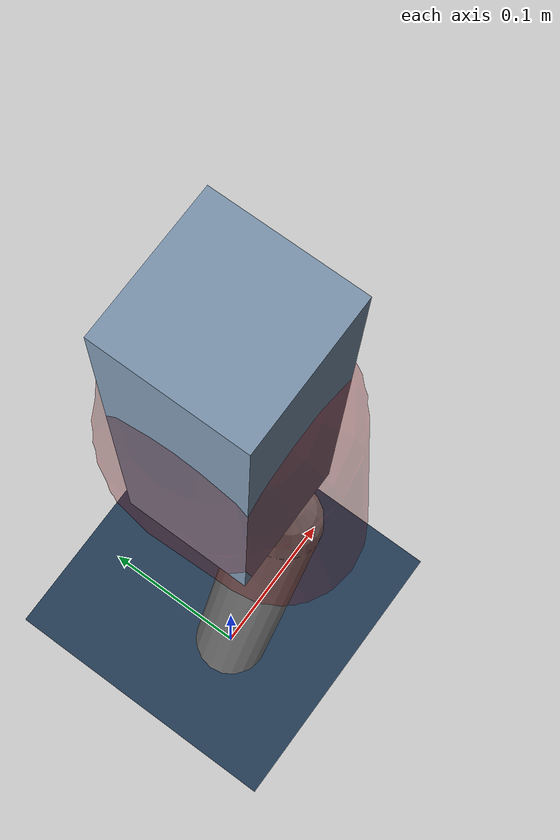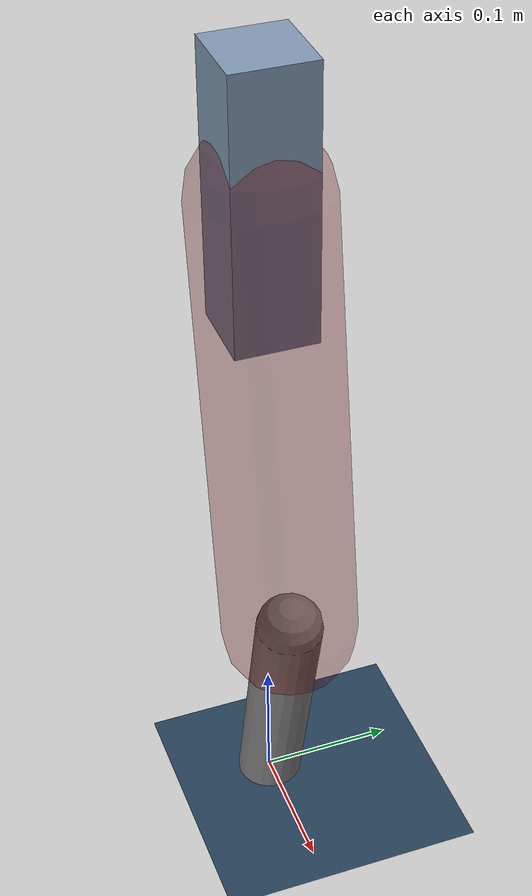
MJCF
<mujoco model="Hopper2D">
	<compiler inertiafromgeom="true" angle="radian" />
	<option timestep="0.001" integrator="implicit" cone="elliptic" solver="Newton" tolerance="1e-10" />

	<default>
		<geom contype="1" conaffinity="1" condim="3" friction="2 0.005 0.0001" solref="0.005 1" />
		<joint limited="true" damping="0.1" />
	</default>

	<asset>
		<texture name="skybox" type="skybox" builtin="gradient" rgb1=".4 .6 .8" rgb2="0 0 0" width="800" height="800" />
		<texture name="grid" type="2d" builtin="checker" rgb1=".1 .2 .3" rgb2=".2 .3 .4" width="300" height="300" mark="edge" markrgb=".2 .3 .4" />
		<material name="ground" texture="grid" texrepeat="1 1" texuniform="true" reflectance="0.1" />
		<material name="leg" rgba="0.5 0.6 0.7 1" />
	</asset>

	<worldbody>

		<geom name="floor" type="plane" size="5 5 0.25" material="ground" />

		<light directional="false" diffuse="0.8 0.8 0.8" specular="0.3 0.3 0.3" pos="0 0 2" dir="0 0 -1" />
		<light mode="targetbodycom" target="base" directional="false" diffuse="0.8 0.8 0.8" specular="0.3 0.3 0.3" pos="0 0 2" dir="0 0 -1" />

		<camera name="fixed" pos="0 -2 1" xyaxes="1 0 0 0 0 1" />
		<camera name="tracking" mode="trackcom" pos="0 -3 1" />

		<body name="root" pos="0 0 0.5255403020145168">
			<joint name="slide_x" type="slide" axis="1 0 0" range="-100 100" />
			<joint name="slide_z" type="slide" axis="0 0 1" range="0 10" />

			<body name="base" pos="0 0 0">
				<geom name="torso" type="box" size="0.03 0.03 0.1" mass="3.687" material="leg" />

				<body name="link1" pos="0 0 0" euler="0 1.4202907298494647 0">
					<joint type="hinge" axis="0 -1 0" pos="0 0 0" name="hinge1" limited="true" range="-3.14 3.14" stiffness="0" damping="0.1" />
					<geom name="thigh" type="capsule" fromto="0 0 0 0.33281442297546165 0 0" size="0.05" rgba="0.5 0 0 0.3" mass="1.0786803843312924" />

					<body name="link2" pos="0.33281442297546165 0 0" euler="0 0.3992144922878952 0">
						<joint type="hinge" axis="0 -1 0" pos="0 0 0" name="hinge2" limited="true" range="-3.14 3.14" stiffness="0" damping="0.1" />
						<geom name="shank" type="capsule" fromto="0 0 0 0.20272587903905526 0 0" size="0.025" mass="0.40318070323124416" />

					</body>
				</body>
			</body>
		</body>
	</worldbody>

	<actuator>
		<motor name="torque1" joint="hinge1" ctrlrange="-154.31586697740207 154.31586697740207" ctrllimited="true" gear="1" />
		<motor name="torque2" joint="hinge2" ctrlrange="-119.68648085450813 119.68648085450813" ctrllimited="true" gear="1" />
	</actuator>
</mujoco>
